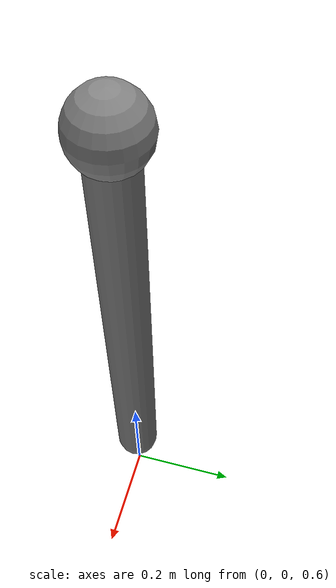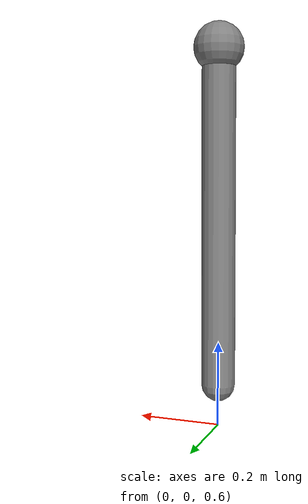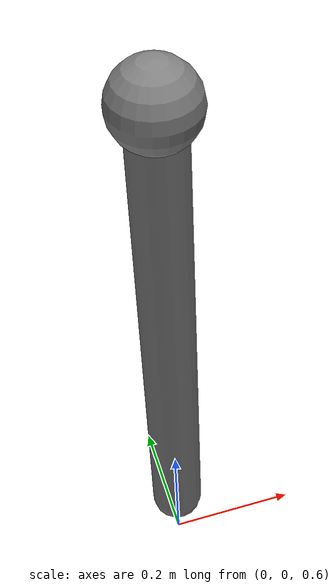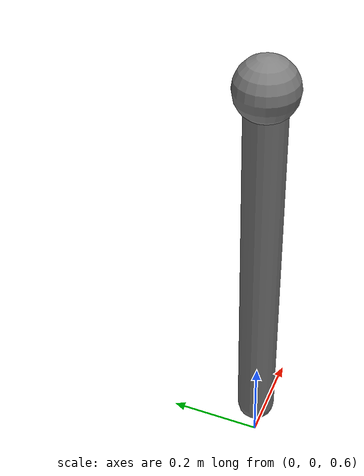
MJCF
<mujoco model="pd_servo_test">

    <compiler angle="radian"/>

    <option
        timestep="0.002"
        gravity="0 0 0"
    />

    <worldbody>

        <body
            name="pendulum_base"
            pos="0 0 1.5"
        >

            <geom
                name="base_visual"
                type="sphere"
                size="0.06"
                mass="0.1"
                contype="0"
                conaffinity="0"
            />

            <body
                name="pendulum_link"
                pos="0 0 0"
            >

                <joint
                    name="pendulum_joint"
                    type="hinge"
                    axis="0 1 0"
                    limited="true"
                    range="-3.14 3.14"
                    damping="0"
                />

                <geom
                    name="link"
                    type="capsule"
                    fromto="0 0 0 0 0 -0.8"
                    size="0.04"
                    mass="1.0"
                />

            </body>

        </body>

    </worldbody>

    <actuator>
        <motor
            name="pendulum_motor"
            joint="pendulum_joint"
            gear="1"
        />
    </actuator>

</mujoco>
